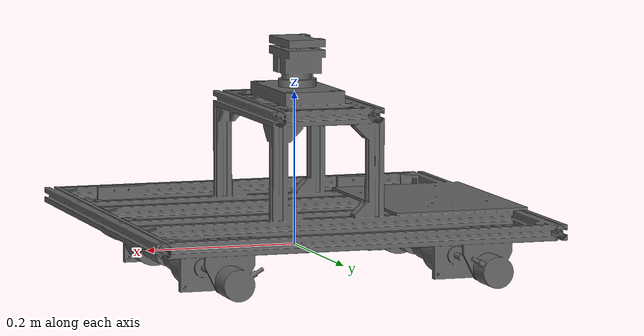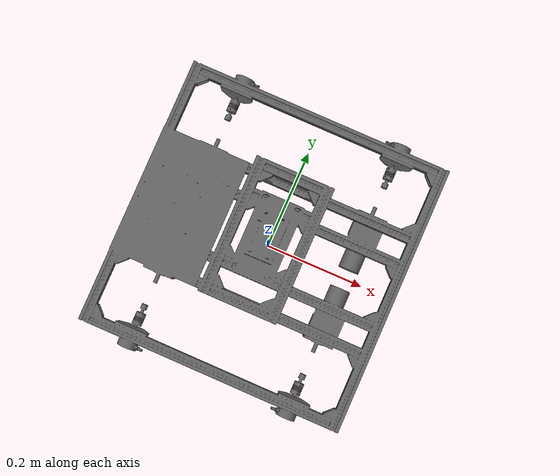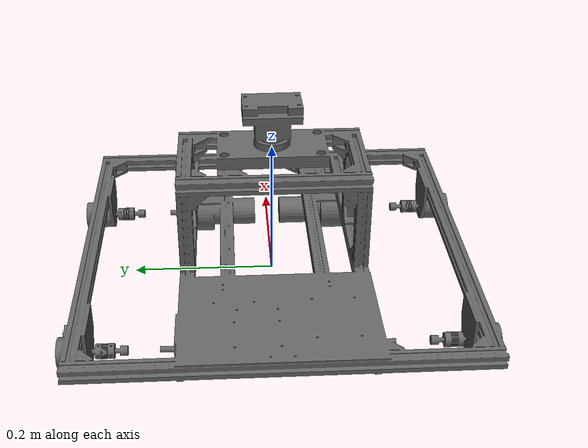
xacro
<?xml version="1.0"?>
<robot name="holo" xmlns:xacro="http://ros.org/wiki/xacro">
  <material name="black"><color rgba="0.15 0.15 0.15 1.0" /></material>
  <material name="dark_grey"><color rgba="0.2 0.2 0.2 1.0" /></material>
  <material name="light_grey"><color rgba="0.4 0.4 0.4 1.0" /></material>
  <link name="base_footprint"></link>
  <joint name="base_link_joint" type="fixed">
    <origin xyz="0 0 0.05" rpy="0 0 0" />
    <parent link="base_footprint"/>
    <child link="base_link"/>
  </joint>

  <link name="base_link">
    <inertial>
      <origin
        xyz="-0.0152231861455379 -0.000658896853065293 0.00462791999209499"
        rpy="0 0 0" />
      <mass value="10" />
      <inertia
        ixx="0"
        ixy="0"
        ixz="0"
        iyy="0"
        iyz="0"
        izz="0" />
    </inertial>
    <visual>
      <origin xyz="0 0 0" rpy="0 0 0" />
      <geometry>
        <mesh filename="package://holo_description/meshes/base_link.STL" />
      </geometry>
      <material name="light_grey"/>
    </visual>
    <collision>
      <origin
        xyz="0 0 0"
        rpy="0 0 0" />
      <geometry>
        <mesh
          filename="package://holo_description/meshes/base_link.STL" />
      </geometry>
    </collision>
  </link>

  <!-- Include controller plugin for Gazebo -->
  <xacro:include filename="$(find holo_description)/urdf/holo.gazebo"/>

</robot>
